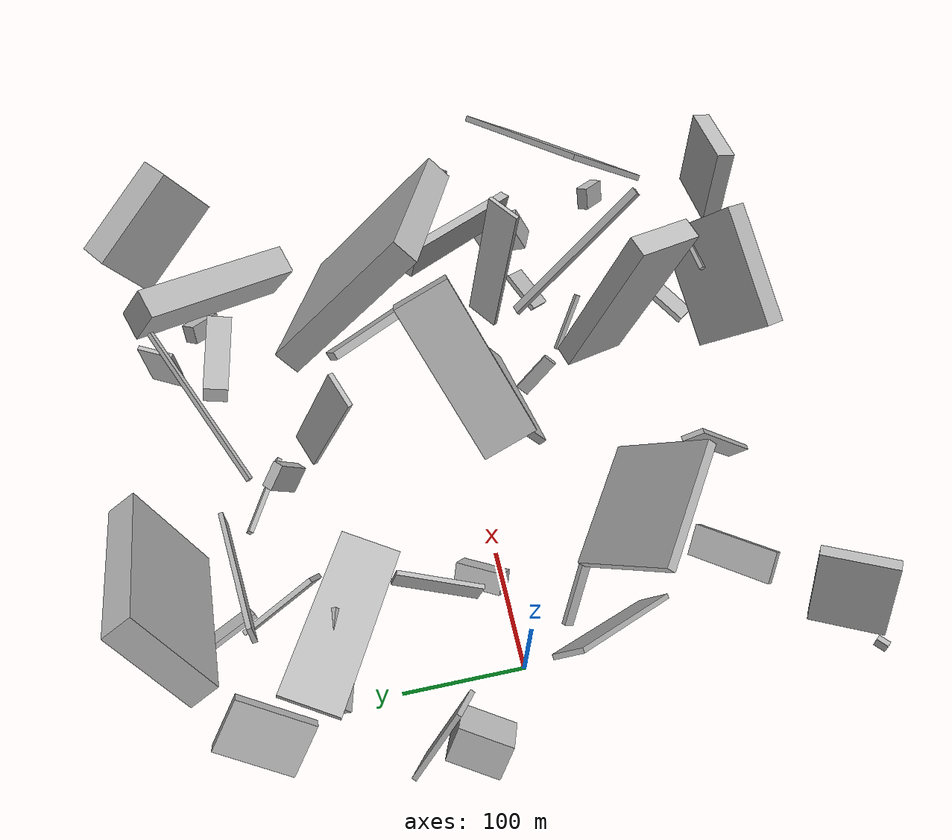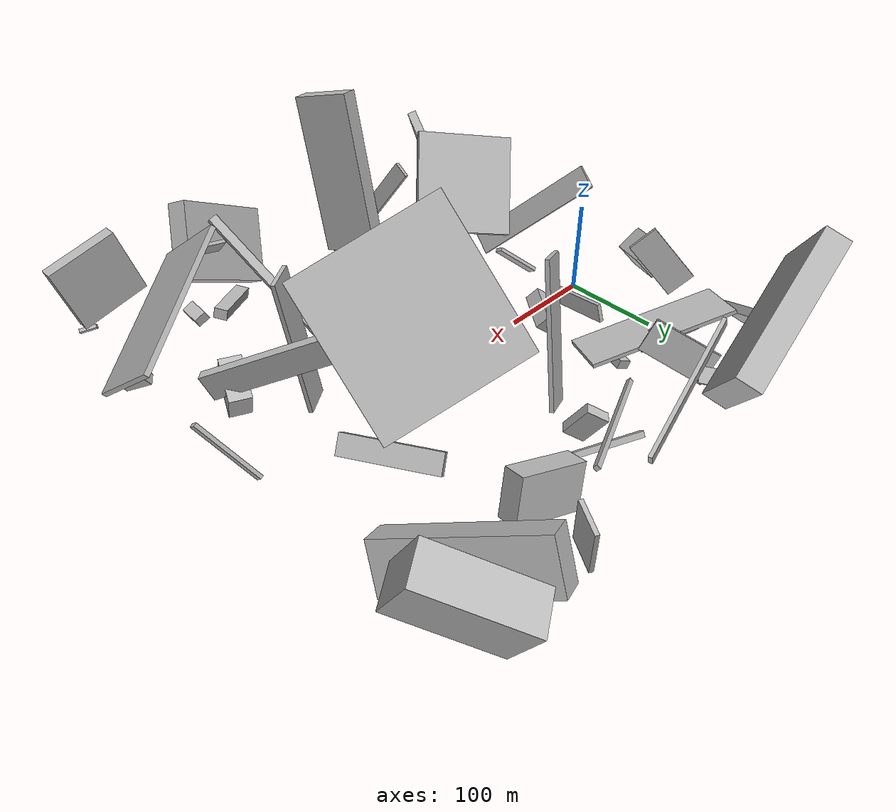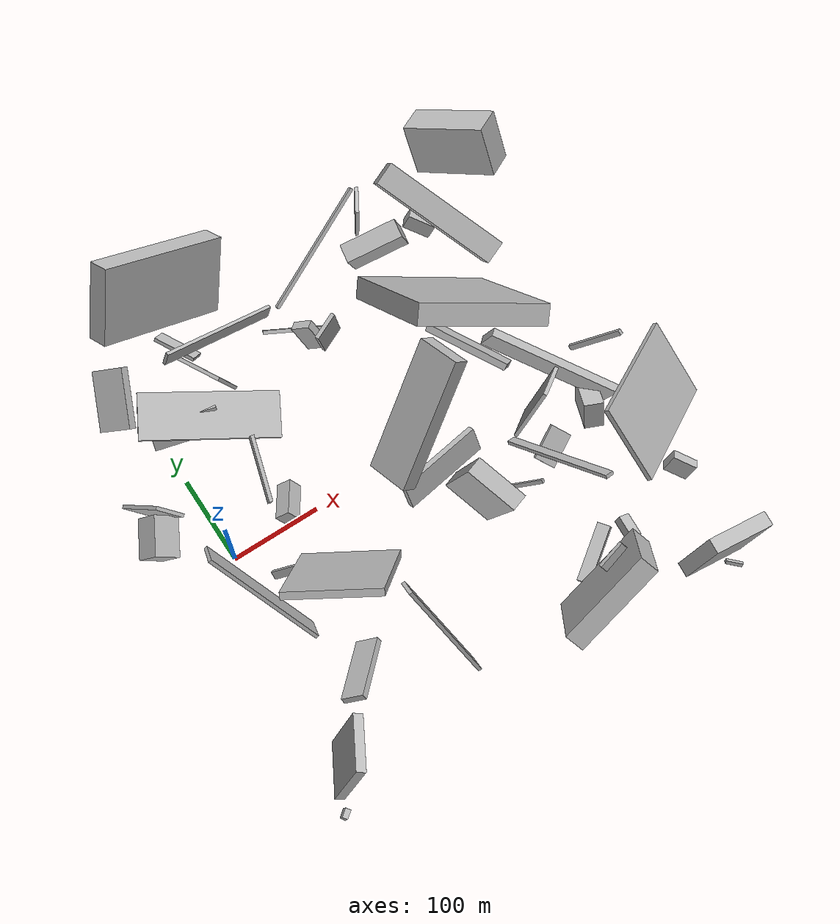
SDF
<sdf version="1.6">
 <world name="default">
  <scene>
   <sky><clouds><speed>12</speed></clouds></sky>
   <ambient>0.4 0.4 0.4 1</ambient>
   <background>0.7 0.7 0.7 1</background>
   <shadows>1</shadows>
  </scene>
  <gravity>0 0 -9.8066</gravity>
  <magnetic_field>6e-06 2.3e-05 -4.2e-05</magnetic_field>
  <physics default="0" name="default_physics" type="ode">
   <ode>
    <solver>
     <type>quick</type>
     <iters>10</iters>
     <sor>1.0</sor>
     <use_dynamic_moi_rescaling>0</use_dynamic_moi_rescaling>
    </solver>
    <constraints>
     <cfm>0</cfm>
     <erp>0.2</erp>
     <contact_max_correcting_vel>100</contact_max_correcting_vel>
     <contact_surface_layer>0.001</contact_surface_layer>
    </constraints>
   </ode>
   <max_step_size>0.004</max_step_size>
   <real_time_factor>1</real_time_factor>
   <real_time_update_rate>250</real_time_update_rate>
  </physics>
  <light name="sun" type="directional">
   <pose>0 0 10 0 0 0</pose>
   <diffuse>0.8 0.8 0.8 1</diffuse>
   <specular>0.2 0.2 0.2 1</specular>
   <attenuation>
    <range>1000</range>
    <constant>0.9</constant>
    <linear>0.01</linear>
    <quadratic>0.001</quadratic>
   </attenuation>
   <direction>-0.5 0.1 -0.9</direction>
  </light>
  <model name="building_1">
   <static>0</static>
   <pose>221.487763181922 23.052181419370008 89.71528710508542 1.1504890113441701 -0.7216341572448466 0.5139777428919662</pose>
   <link name="link">
    <gravity>0</gravity>
    <pose>0 0 25.0 0 0 0</pose>
    <collision name="collision"><geometry><box><size>150 19 50</size></box></geometry></collision>
    <visual name="visual">
     <cast_shadows>0</cast_shadows>
     <geometry><box><size>150 19 50</size></box></geometry>
     <material>
      <script>
       <uri>model://HANNAS_wall/materials/scripts</uri>
       <uri>model://HANNAS_wall/materials/textures</uri>
       <name>vrc/HANNAS_wall</name>
      </script>
     </material>
    </visual>
   </link>
  </model>
  <model name="building_2">
   <static>0</static>
   <pose>306.37165887382406 118.41661022144774 97.43362051471435 0.487295398145837 -0.6081858840977054 0.8956017029563953</pose>
   <link name="link">
    <gravity>0</gravity>
    <pose>0 0 75.0 0 0 0</pose>
    <collision name="collision"><geometry><box><size>23 143 150</size></box></geometry></collision>
    <visual name="visual">
     <cast_shadows>0</cast_shadows>
     <geometry><box><size>23 143 150</size></box></geometry>
     <material>
      <script>
       <uri>model://HANNAS_wall/materials/scripts</uri>
       <uri>model://HANNAS_wall/materials/textures</uri>
       <name>vrc/HANNAS_wall</name>
      </script>
     </material>
    </visual>
   </link>
  </model>
  <model name="building_3">
   <static>0</static>
   <pose>349.18855612760245 -92.22225526832418 18.828459376212162 0.5432671858082264 -0.8948896162883102 -1.5203595608651708</pose>
   <link name="link">
    <gravity>0</gravity>
    <pose>0 0 13.0 0 0 0</pose>
    <collision name="collision"><geometry><box><size>4 39 26</size></box></geometry></collision>
    <visual name="visual">
     <cast_shadows>0</cast_shadows>
     <geometry><box><size>4 39 26</size></box></geometry>
     <material>
      <script>
       <uri>model://HANNAS_wall/materials/scripts</uri>
       <uri>model://HANNAS_wall/materials/textures</uri>
       <name>vrc/HANNAS_wall</name>
      </script>
     </material>
    </visual>
   </link>
  </model>
  <model name="building_4">
   <static>0</static>
   <pose>394.0652277571636 -77.01510103814181 34.584760661903395 0.4502021482949957 0.016516670663098473 2.7308101255838815</pose>
   <link name="link">
    <gravity>0</gravity>
    <pose>0 0 16.0 0 0 0</pose>
    <collision name="collision"><geometry><box><size>21 43 32</size></box></geometry></collision>
    <visual name="visual">
     <cast_shadows>0</cast_shadows>
     <geometry><box><size>21 43 32</size></box></geometry>
     <material>
      <script>
       <uri>model://HANNAS_wall/materials/scripts</uri>
       <uri>model://HANNAS_wall/materials/textures</uri>
       <name>vrc/HANNAS_wall</name>
      </script>
     </material>
    </visual>
   </link>
  </model>
  <model name="building_5">
   <static>0</static>
   <pose>2.1083276253367247 -56.18322713752136 59.8862066766759 -0.5495255152679134 -0.737931118724055 2.098816565819649</pose>
   <link name="link">
    <gravity>0</gravity>
    <pose>0 0 13.0 0 0 0</pose>
    <collision name="collision"><geometry><box><size>150 4 26</size></box></geometry></collision>
    <visual name="visual">
     <cast_shadows>0</cast_shadows>
     <geometry><box><size>150 4 26</size></box></geometry>
     <material>
      <script>
       <uri>model://HANNAS_wall/materials/scripts</uri>
       <uri>model://HANNAS_wall/materials/textures</uri>
       <name>vrc/HANNAS_wall</name>
      </script>
     </material>
    </visual>
   </link>
  </model>
  <model name="building_6">
   <static>0</static>
   <pose>448.9790067865647 -278.0459087060791 62.665408264974815 0.3062302924070294 -1.2805442300413312 -0.36524879793346143</pose>
   <link name="link">
    <gravity>0</gravity>
    <pose>0 0 36.5 0 0 0</pose>
    <collision name="collision"><geometry><box><size>71 16 73</size></box></geometry></collision>
    <visual name="visual">
     <cast_shadows>0</cast_shadows>
     <geometry><box><size>71 16 73</size></box></geometry>
     <material>
      <script>
       <uri>model://HANNAS_wall/materials/scripts</uri>
       <uri>model://HANNAS_wall/materials/textures</uri>
       <name>vrc/HANNAS_wall</name>
      </script>
     </material>
    </visual>
   </link>
  </model>
  <model name="building_7">
   <static>0</static>
   <pose>301.55787692608806 -63.39902523548898 55.38471521442872 0.8366072376267925 0.22756160512058615 0.10301519235451419</pose>
   <link name="link">
    <gravity>0</gravity>
    <pose>0 0 75.0 0 0 0</pose>
    <collision name="collision"><geometry><box><size>9 4 150</size></box></geometry></collision>
    <visual name="visual">
     <cast_shadows>0</cast_shadows>
     <geometry><box><size>9 4 150</size></box></geometry>
     <material>
      <script>
       <uri>model://HANNAS_wall/materials/scripts</uri>
       <uri>model://HANNAS_wall/materials/textures</uri>
       <name>vrc/HANNAS_wall</name>
      </script>
     </material>
    </visual>
   </link>
  </model>
  <model name="building_8">
   <static>0</static>
   <pose>188.1029168388258 183.07882784282748 10.422866547539726 1.032464102278328 -0.07662437686516964 2.6918651828392397</pose>
   <link name="link">
    <gravity>0</gravity>
    <pose>0 0 2.0 0 0 0</pose>
    <collision name="collision"><geometry><box><size>74 6 4</size></box></geometry></collision>
    <visual name="visual">
     <cast_shadows>0</cast_shadows>
     <geometry><box><size>74 6 4</size></box></geometry>
     <material>
      <script>
       <uri>model://HANNAS_wall/materials/scripts</uri>
       <uri>model://HANNAS_wall/materials/textures</uri>
       <name>vrc/HANNAS_wall</name>
      </script>
     </material>
    </visual>
   </link>
  </model>
  <model name="building_9">
   <static>0</static>
   <pose>223.14847661806752 -104.09561385630366 102.64367542068244 -0.1289463837462255 -0.24485585635860788 1.9115555844627294</pose>
   <link name="link">
    <gravity>0</gravity>
    <pose>0 0 75.0 0 0 0</pose>
    <collision name="collision"><geometry><box><size>54 17 150</size></box></geometry></collision>
    <visual name="visual">
     <cast_shadows>0</cast_shadows>
     <geometry><box><size>54 17 150</size></box></geometry>
     <material>
      <script>
       <uri>model://HANNAS_wall/materials/scripts</uri>
       <uri>model://HANNAS_wall/materials/textures</uri>
       <name>vrc/HANNAS_wall</name>
      </script>
     </material>
    </visual>
   </link>
  </model>
  <model name="building_10">
   <static>0</static>
   <pose>446.6483636326277 -169.8048078042415 21.704352148604237 1.1427957527172317 0.38540714820381405 -0.8767174969706566</pose>
   <link name="link">
    <gravity>0</gravity>
    <pose>0 0 5.5 0 0 0</pose>
    <collision name="collision"><geometry><box><size>28 21 11</size></box></geometry></collision>
    <visual name="visual">
     <cast_shadows>0</cast_shadows>
     <geometry><box><size>28 21 11</size></box></geometry>
     <material>
      <script>
       <uri>model://HANNAS_wall/materials/scripts</uri>
       <uri>model://HANNAS_wall/materials/textures</uri>
       <name>vrc/HANNAS_wall</name>
      </script>
     </material>
    </visual>
   </link>
  </model>
  <model name="building_11">
   <static>0</static>
   <pose>63.84089888100075 207.12878020353634 37.773058555824925 -1.1977591874860782 0.3021518487757635 -2.6470807192223447</pose>
   <link name="link">
    <gravity>0</gravity>
    <pose>0 0 33.0 0 0 0</pose>
    <collision name="collision"><geometry><box><size>4 34 66</size></box></geometry></collision>
    <visual name="visual">
     <cast_shadows>0</cast_shadows>
     <geometry><box><size>4 34 66</size></box></geometry>
     <material>
      <script>
       <uri>model://HANNAS_wall/materials/scripts</uri>
       <uri>model://HANNAS_wall/materials/textures</uri>
       <name>vrc/HANNAS_wall</name>
      </script>
     </material>
    </visual>
   </link>
  </model>
  <model name="building_12">
   <static>0</static>
   <pose>433.3062196112807 -157.1507608249663 92.40449018547355 0.566073983072916 0.7354469500131228 2.49376679984294</pose>
   <link name="link">
    <gravity>0</gravity>
    <pose>0 0 44.5 0 0 0</pose>
    <collision name="collision"><geometry><box><size>5 147 89</size></box></geometry></collision>
    <visual name="visual">
     <cast_shadows>0</cast_shadows>
     <geometry><box><size>5 147 89</size></box></geometry>
     <material>
      <script>
       <uri>model://HANNAS_wall/materials/scripts</uri>
       <uri>model://HANNAS_wall/materials/textures</uri>
       <name>vrc/HANNAS_wall</name>
      </script>
     </material>
    </visual>
   </link>
  </model>
  <model name="building_13">
   <static>0</static>
   <pose>269.1937434869212 -94.40329577128684 30.97539997903222 0.7743611436172196 -0.5621740107847696 1.4181478218874586</pose>
   <link name="link">
    <gravity>0</gravity>
    <pose>0 0 26.0 0 0 0</pose>
    <collision name="collision"><geometry><box><size>4 4 52</size></box></geometry></collision>
    <visual name="visual">
     <cast_shadows>0</cast_shadows>
     <geometry><box><size>4 4 52</size></box></geometry>
     <material>
      <script>
       <uri>model://HANNAS_wall/materials/scripts</uri>
       <uri>model://HANNAS_wall/materials/textures</uri>
       <name>vrc/HANNAS_wall</name>
      </script>
     </material>
    </visual>
   </link>
  </model>
  <model name="building_14">
   <static>0</static>
   <pose>94.0554481715506 -82.49632811102951 73.15397356031286 0.2106945727562146 0.6328294521176044 -2.0287657554497716</pose>
   <link name="link">
    <gravity>0</gravity>
    <pose>0 0 52.0 0 0 0</pose>
    <collision name="collision"><geometry><box><size>8 101 104</size></box></geometry></collision>
    <visual name="visual">
     <cast_shadows>0</cast_shadows>
     <geometry><box><size>8 101 104</size></box></geometry>
     <material>
      <script>
       <uri>model://HANNAS_wall/materials/scripts</uri>
       <uri>model://HANNAS_wall/materials/textures</uri>
       <name>vrc/HANNAS_wall</name>
      </script>
     </material>
    </visual>
   </link>
  </model>
  <model name="building_15">
   <static>0</static>
   <pose>-46.49225082990135 77.14807404161283 45.63810638779557 1.8451822231751436 -0.8370651213435332 -0.9854765439035241</pose>
   <link name="link">
    <gravity>0</gravity>
    <pose>0 0 2.0 0 0 0</pose>
    <collision name="collision"><geometry><box><size>71 33 4</size></box></geometry></collision>
    <visual name="visual">
     <cast_shadows>0</cast_shadows>
     <geometry><box><size>71 33 4</size></box></geometry>
     <material>
      <script>
       <uri>model://HANNAS_wall/materials/scripts</uri>
       <uri>model://HANNAS_wall/materials/textures</uri>
       <name>vrc/HANNAS_wall</name>
      </script>
     </material>
    </visual>
   </link>
  </model>
  <model name="building_16">
   <static>0</static>
   <pose>428.8288596357012 -289.16528396583954 11.182221236304539 0.34681171159053414 0.5791145853813909 1.079747810632219</pose>
   <link name="link">
    <gravity>0</gravity>
    <pose>0 0 2.0 0 0 0</pose>
    <collision name="collision"><geometry><box><size>4 19 4</size></box></geometry></collision>
    <visual name="visual">
     <cast_shadows>0</cast_shadows>
     <geometry><box><size>4 19 4</size></box></geometry>
     <material>
      <script>
       <uri>model://HANNAS_wall/materials/scripts</uri>
       <uri>model://HANNAS_wall/materials/textures</uri>
       <name>vrc/HANNAS_wall</name>
      </script>
     </material>
    </visual>
   </link>
  </model>
  <model name="building_17">
   <static>0</static>
   <pose>-64.65300421325253 55.6944119049768 28.747870370325547 0.6948681578098627 -0.18293427075062013 1.0628794129979933</pose>
   <link name="link">
    <gravity>0</gravity>
    <pose>0 0 15.5 0 0 0</pose>
    <collision name="collision"><geometry><box><size>43 29 31</size></box></geometry></collision>
    <visual name="visual">
     <cast_shadows>0</cast_shadows>
     <geometry><box><size>43 29 31</size></box></geometry>
     <material>
      <script>
       <uri>model://HANNAS_wall/materials/scripts</uri>
       <uri>model://HANNAS_wall/materials/textures</uri>
       <name>vrc/HANNAS_wall</name>
      </script>
     </material>
    </visual>
   </link>
  </model>
  <model name="building_18">
   <static>0</static>
   <pose>119.86898775649233 102.6443285574504 28.687390218411476 0.6804026728440113 -1.301770346958528 -1.166630652655814</pose>
   <link name="link">
    <gravity>0</gravity>
    <pose>0 0 75.0 0 0 0</pose>
    <collision name="collision"><geometry><box><size>4 51 150</size></box></geometry></collision>
    <visual name="visual">
     <cast_shadows>0</cast_shadows>
     <geometry><box><size>4 51 150</size></box></geometry>
     <material>
      <script>
       <uri>model://HANNAS_wall/materials/scripts</uri>
       <uri>model://HANNAS_wall/materials/textures</uri>
       <name>vrc/HANNAS_wall</name>
      </script>
     </material>
    </visual>
   </link>
  </model>
  <model name="building_19">
   <static>0</static>
   <pose>83.71980137300305 127.78999380330467 9.413897527061138 1.5899461127672865 -0.36858740152783576 -0.35844128857172625</pose>
   <link name="link">
    <gravity>0</gravity>
    <pose>0 0 7.0 0 0 0</pose>
    <collision name="collision"><geometry><box><size>13 9 14</size></box></geometry></collision>
    <visual name="visual">
     <cast_shadows>0</cast_shadows>
     <geometry><box><size>13 9 14</size></box></geometry>
     <material>
      <script>
       <uri>model://HANNAS_wall/materials/scripts</uri>
       <uri>model://HANNAS_wall/materials/textures</uri>
       <name>vrc/HANNAS_wall</name>
      </script>
     </material>
    </visual>
   </link>
  </model>
  <model name="building_20">
   <static>0</static>
   <pose>71.34395675973202 228.04225402850452 33.35159090909338 0.8778341948695125 0.012130317868303922 -1.0774653675431893</pose>
   <link name="link">
    <gravity>0</gravity>
    <pose>0 0 8.0 0 0 0</pose>
    <collision name="collision"><geometry><box><size>49 4 16</size></box></geometry></collision>
    <visual name="visual">
     <cast_shadows>0</cast_shadows>
     <geometry><box><size>49 4 16</size></box></geometry>
     <material>
      <script>
       <uri>model://HANNAS_wall/materials/scripts</uri>
       <uri>model://HANNAS_wall/materials/textures</uri>
       <name>vrc/HANNAS_wall</name>
      </script>
     </material>
    </visual>
   </link>
  </model>
  <model name="building_21">
   <static>0</static>
   <pose>323.95590285490766 -225.42413151246487 89.4848388420625 -2.1303280940256344 -0.9139607356548808 2.266364374116667</pose>
   <link name="link">
    <gravity>0</gravity>
    <pose>0 0 15.5 0 0 0</pose>
    <collision name="collision"><geometry><box><size>14 4 31</size></box></geometry></collision>
    <visual name="visual">
     <cast_shadows>0</cast_shadows>
     <geometry><box><size>14 4 31</size></box></geometry>
     <material>
      <script>
       <uri>model://HANNAS_wall/materials/scripts</uri>
       <uri>model://HANNAS_wall/materials/textures</uri>
       <name>vrc/HANNAS_wall</name>
      </script>
     </material>
    </visual>
   </link>
  </model>
  <model name="building_22">
   <static>0</static>
   <pose>65.9152194957897 -157.19209280702214 32.84388829723512 1.1067773082874497 -0.5784550654217859 -0.5138934859402368</pose>
   <link name="link">
    <gravity>0</gravity>
    <pose>0 0 35.0 0 0 0</pose>
    <collision name="collision"><geometry><box><size>26 7 70</size></box></geometry></collision>
    <visual name="visual">
     <cast_shadows>0</cast_shadows>
     <geometry><box><size>26 7 70</size></box></geometry>
     <material>
      <script>
       <uri>model://HANNAS_wall/materials/scripts</uri>
       <uri>model://HANNAS_wall/materials/textures</uri>
       <name>vrc/HANNAS_wall</name>
      </script>
     </material>
    </visual>
   </link>
  </model>
  <model name="building_23">
   <static>0</static>
   <pose>-44.4304865005443 -282.58050858570743 9.325669657496165 -1.9478604974328693 -0.12989511432608503 -2.478929467651624</pose>
   <link name="link">
    <gravity>0</gravity>
    <pose>0 0 3.0 0 0 0</pose>
    <collision name="collision"><geometry><box><size>10 7 6</size></box></geometry></collision>
    <visual name="visual">
     <cast_shadows>0</cast_shadows>
     <geometry><box><size>10 7 6</size></box></geometry>
     <material>
      <script>
       <uri>model://HANNAS_wall/materials/scripts</uri>
       <uri>model://HANNAS_wall/materials/textures</uri>
       <name>vrc/HANNAS_wall</name>
      </script>
     </material>
    </visual>
   </link>
  </model>
  <model name="building_24">
   <static>0</static>
   <pose>172.54603858992814 188.43397607420837 78.26055096689532 1.2350118215811734 -0.783314692383547 2.24799412131377</pose>
   <link name="link">
    <gravity>0</gravity>
    <pose>0 0 75.0 0 0 0</pose>
    <collision name="collision"><geometry><box><size>4 4 150</size></box></geometry></collision>
    <visual name="visual">
     <cast_shadows>0</cast_shadows>
     <geometry><box><size>4 4 150</size></box></geometry>
     <material>
      <script>
       <uri>model://HANNAS_wall/materials/scripts</uri>
       <uri>model://HANNAS_wall/materials/textures</uri>
       <name>vrc/HANNAS_wall</name>
      </script>
     </material>
    </visual>
   </link>
  </model>
  <model name="building_25">
   <static>0</static>
   <pose>135.88021328500759 260.67090902384666 85.79259676762871 -0.6268693533167583 -0.8654298717072965 0.8402373945189332</pose>
   <link name="link">
    <gravity>0</gravity>
    <pose>0 0 75.0 0 0 0</pose>
    <collision name="collision"><geometry><box><size>84 24 150</size></box></geometry></collision>
    <visual name="visual">
     <cast_shadows>0</cast_shadows>
     <geometry><box><size>84 24 150</size></box></geometry>
     <material>
      <script>
       <uri>model://HANNAS_wall/materials/scripts</uri>
       <uri>model://HANNAS_wall/materials/textures</uri>
       <name>vrc/HANNAS_wall</name>
      </script>
     </material>
    </visual>
   </link>
  </model>
  <model name="building_26">
   <static>0</static>
   <pose>68.7282432387118 59.132446476244525 30.567013219413347 0.2734365703572838 0.10195950674282069 -0.2499576951515711</pose>
   <link name="link">
    <gravity>0</gravity>
    <pose>0 0 9.5 0 0 0</pose>
    <collision name="collision"><geometry><box><size>4 72 19</size></box></geometry></collision>
    <visual name="visual">
     <cast_shadows>0</cast_shadows>
     <geometry><box><size>4 72 19</size></box></geometry>
     <material>
      <script>
       <uri>model://HANNAS_wall/materials/scripts</uri>
       <uri>model://HANNAS_wall/materials/textures</uri>
       <name>vrc/HANNAS_wall</name>
      </script>
     </material>
    </visual>
   </link>
  </model>
  <model name="building_27">
   <static>0</static>
   <pose>310.2370793813675 252.4253317223446 27.62426879864359 0.035298390022554894 0.08216526622540739 1.0413134823690573</pose>
   <link name="link">
    <gravity>0</gravity>
    <pose>0 0 23.0 0 0 0</pose>
    <collision name="collision"><geometry><box><size>33 4 46</size></box></geometry></collision>
    <visual name="visual">
     <cast_shadows>0</cast_shadows>
     <geometry><box><size>33 4 46</size></box></geometry>
     <material>
      <script>
       <uri>model://HANNAS_wall/materials/scripts</uri>
       <uri>model://HANNAS_wall/materials/textures</uri>
       <name>vrc/HANNAS_wall</name>
      </script>
     </material>
    </visual>
   </link>
  </model>
  <model name="building_28">
   <static>0</static>
   <pose>-18.35377096765872 -247.57259429507522 75.71313805005863 2.612071149374628 -1.2044796863183518 -0.004999801353871519</pose>
   <link name="link">
    <gravity>0</gravity>
    <pose>0 0 5.0 0 0 0</pose>
    <collision name="collision"><geometry><box><size>75 58 10</size></box></geometry></collision>
    <visual name="visual">
     <cast_shadows>0</cast_shadows>
     <geometry><box><size>75 58 10</size></box></geometry>
     <material>
      <script>
       <uri>model://HANNAS_wall/materials/scripts</uri>
       <uri>model://HANNAS_wall/materials/textures</uri>
       <name>vrc/HANNAS_wall</name>
      </script>
     </material>
    </visual>
   </link>
  </model>
  <model name="building_29">
   <static>0</static>
   <pose>252.0978189315573 -71.53004211276829 22.6452840596981 0.9726970083073001 0.45103605826171944 -2.265608150638322</pose>
   <link name="link">
    <gravity>0</gravity>
    <pose>0 0 2.0 0 0 0</pose>
    <collision name="collision"><geometry><box><size>12 41 4</size></box></geometry></collision>
    <visual name="visual">
     <cast_shadows>0</cast_shadows>
     <geometry><box><size>12 41 4</size></box></geometry>
     <material>
      <script>
       <uri>model://HANNAS_wall/materials/scripts</uri>
       <uri>model://HANNAS_wall/materials/textures</uri>
       <name>vrc/HANNAS_wall</name>
      </script>
     </material>
    </visual>
   </link>
  </model>
  <model name="building_30">
   <static>0</static>
   <pose>25.63002864782783 136.69155087377217 19.42998694099016 -0.005006454142047644 -0.5592634946960919 -1.8117729302213454</pose>
   <link name="link">
    <gravity>0</gravity>
    <pose>0 0 15.5 0 0 0</pose>
    <collision name="collision"><geometry><box><size>13 74 31</size></box></geometry></collision>
    <visual name="visual">
     <cast_shadows>0</cast_shadows>
     <geometry><box><size>13 74 31</size></box></geometry>
     <material>
      <script>
       <uri>model://HANNAS_wall/materials/scripts</uri>
       <uri>model://HANNAS_wall/materials/textures</uri>
       <name>vrc/HANNAS_wall</name>
      </script>
     </material>
    </visual>
   </link>
  </model>
  <model name="building_31">
   <static>0</static>
   <pose>446.1607071318818 -15.460254938839782 40.37292229696583 -0.4693361648087987 -0.9050724454869742 -0.7772140475973355</pose>
   <link name="link">
    <gravity>0</gravity>
    <pose>0 0 3.0 0 0 0</pose>
    <collision name="collision"><geometry><box><size>77 4 6</size></box></geometry></collision>
    <visual name="visual">
     <cast_shadows>0</cast_shadows>
     <geometry><box><size>77 4 6</size></box></geometry>
     <material>
      <script>
       <uri>model://HANNAS_wall/materials/scripts</uri>
       <uri>model://HANNAS_wall/materials/textures</uri>
       <name>vrc/HANNAS_wall</name>
      </script>
     </material>
    </visual>
   </link>
  </model>
  <model name="building_32">
   <static>0</static>
   <pose>-35.134870644727606 216.06391149186948 36.36923954604882 0.6056303906605601 0.796397655482424 0.029857323301613215</pose>
   <link name="link">
    <gravity>0</gravity>
    <pose>0 0 22.0 0 0 0</pose>
    <collision name="collision"><geometry><box><size>9 65 44</size></box></geometry></collision>
    <visual name="visual">
     <cast_shadows>0</cast_shadows>
     <geometry><box><size>9 65 44</size></box></geometry>
     <material>
      <script>
       <uri>model://HANNAS_wall/materials/scripts</uri>
       <uri>model://HANNAS_wall/materials/textures</uri>
       <name>vrc/HANNAS_wall</name>
      </script>
     </material>
    </visual>
   </link>
  </model>
  <model name="building_33">
   <static>0</static>
   <pose>130.58962948082916 -200.01432263157383 71.0646627459925 2.127540978189792 0.21976158034929089 -3.064113433756242</pose>
   <link name="link">
    <gravity>0</gravity>
    <pose>0 0 9.0 0 0 0</pose>
    <collision name="collision"><geometry><box><size>4 150 18</size></box></geometry></collision>
    <visual name="visual">
     <cast_shadows>0</cast_shadows>
     <geometry><box><size>4 150 18</size></box></geometry>
     <material>
      <script>
       <uri>model://HANNAS_wall/materials/scripts</uri>
       <uri>model://HANNAS_wall/materials/textures</uri>
       <name>vrc/HANNAS_wall</name>
      </script>
     </material>
    </visual>
   </link>
  </model>
  <model name="building_34">
   <static>0</static>
   <pose>419.3512300566481 -77.05500492413213 58.59031298518307 1.1576916806750817 -0.030302983650561718 -2.410207934391909</pose>
   <link name="link">
    <gravity>0</gravity>
    <pose>0 0 75.0 0 0 0</pose>
    <collision name="collision"><geometry><box><size>9 27 150</size></box></geometry></collision>
    <visual name="visual">
     <cast_shadows>0</cast_shadows>
     <geometry><box><size>9 27 150</size></box></geometry>
     <material>
      <script>
       <uri>model://HANNAS_wall/materials/scripts</uri>
       <uri>model://HANNAS_wall/materials/textures</uri>
       <name>vrc/HANNAS_wall</name>
      </script>
     </material>
    </visual>
   </link>
  </model>
  <model name="building_35">
   <static>0</static>
   <pose>437.4238051691827 234.4380183488754 63.92883557868036 0.43782658801644075 -0.2979122370212956 -2.5911489280520024</pose>
   <link name="link">
    <gravity>0</gravity>
    <pose>0 0 29.5 0 0 0</pose>
    <collision name="collision"><geometry><box><size>35 95 59</size></box></geometry></collision>
    <visual name="visual">
     <cast_shadows>0</cast_shadows>
     <geometry><box><size>35 95 59</size></box></geometry>
     <material>
      <script>
       <uri>model://HANNAS_wall/materials/scripts</uri>
       <uri>model://HANNAS_wall/materials/textures</uri>
       <name>vrc/HANNAS_wall</name>
      </script>
     </material>
    </visual>
   </link>
  </model>
  <model name="building_36">
   <static>0</static>
   <pose>378.27597457133146 222.1511098108302 17.968880909086693 -2.7069672982515818 0.39849488924882104 0.9310266403398733</pose>
   <link name="link">
    <gravity>0</gravity>
    <pose>0 0 8.5 0 0 0</pose>
    <collision name="collision"><geometry><box><size>14 32 17</size></box></geometry></collision>
    <visual name="visual">
     <cast_shadows>0</cast_shadows>
     <geometry><box><size>14 32 17</size></box></geometry>
     <material>
      <script>
       <uri>model://HANNAS_wall/materials/scripts</uri>
       <uri>model://HANNAS_wall/materials/textures</uri>
       <name>vrc/HANNAS_wall</name>
      </script>
     </material>
    </visual>
   </link>
  </model>
  <model name="building_37">
   <static>0</static>
   <pose>311.5310878039233 -204.79605226834576 23.370809117075005 0.15282966561877276 0.22310321405768643 -2.514412123857973</pose>
   <link name="link">
    <gravity>0</gravity>
    <pose>0 0 5.5 0 0 0</pose>
    <collision name="collision"><geometry><box><size>63 14 11</size></box></geometry></collision>
    <visual name="visual">
     <cast_shadows>0</cast_shadows>
     <geometry><box><size>63 14 11</size></box></geometry>
     <material>
      <script>
       <uri>model://HANNAS_wall/materials/scripts</uri>
       <uri>model://HANNAS_wall/materials/textures</uri>
       <name>vrc/HANNAS_wall</name>
      </script>
     </material>
    </visual>
   </link>
  </model>
  <model name="building_38">
   <static>0</static>
   <pose>382.7743538415466 194.38045438800523 66.49972545091856 2.7452587317056674 -0.37211817584470563 2.0557628909654295</pose>
   <link name="link">
    <gravity>0</gravity>
    <pose>0 0 24.0 0 0 0</pose>
    <collision name="collision"><geometry><box><size>150 27 48</size></box></geometry></collision>
    <visual name="visual">
     <cast_shadows>0</cast_shadows>
     <geometry><box><size>150 27 48</size></box></geometry>
     <material>
      <script>
       <uri>model://HANNAS_wall/materials/scripts</uri>
       <uri>model://HANNAS_wall/materials/textures</uri>
       <name>vrc/HANNAS_wall</name>
      </script>
     </material>
    </visual>
   </link>
  </model>
  <model name="building_39">
   <static>0</static>
   <pose>293.58824654241965 -258.7779067310877 66.8586727454058 0.9069892530450516 -0.8985682433496517 -2.188496060492355</pose>
   <link name="link">
    <gravity>0</gravity>
    <pose>0 0 11.0 0 0 0</pose>
    <collision name="collision"><geometry><box><size>79 109 22</size></box></geometry></collision>
    <visual name="visual">
     <cast_shadows>0</cast_shadows>
     <geometry><box><size>79 109 22</size></box></geometry>
     <material>
      <script>
       <uri>model://HANNAS_wall/materials/scripts</uri>
       <uri>model://HANNAS_wall/materials/textures</uri>
       <name>vrc/HANNAS_wall</name>
      </script>
     </material>
    </visual>
   </link>
  </model>
  <model name="building_40">
   <static>0</static>
   <pose>338.2366373622332 -47.89366978698624 79.7824509123653 3.1373657648432807 -1.409605565342906 -0.9693676757325481</pose>
   <link name="link">
    <gravity>0</gravity>
    <pose>0 0 2.0 0 0 0</pose>
    <collision name="collision"><geometry><box><size>140 32 4</size></box></geometry></collision>
    <visual name="visual">
     <cast_shadows>0</cast_shadows>
     <geometry><box><size>140 32 4</size></box></geometry>
     <material>
      <script>
       <uri>model://HANNAS_wall/materials/scripts</uri>
       <uri>model://HANNAS_wall/materials/textures</uri>
       <name>vrc/HANNAS_wall</name>
      </script>
     </material>
    </visual>
   </link>
  </model>
  <model name="building_41">
   <static>0</static>
   <pose>112.87565628380739 212.4171168155816 51.55246846910887 -3.082597711261907 -0.4895062694863584 -2.9815635226651773</pose>
   <link name="link">
    <gravity>0</gravity>
    <pose>0 0 7.5 0 0 0</pose>
    <collision name="collision"><geometry><box><size>150 4 15</size></box></geometry></collision>
    <visual name="visual">
     <cast_shadows>0</cast_shadows>
     <geometry><box><size>150 4 15</size></box></geometry>
     <material>
      <script>
       <uri>model://HANNAS_wall/materials/scripts</uri>
       <uri>model://HANNAS_wall/materials/textures</uri>
       <name>vrc/HANNAS_wall</name>
      </script>
     </material>
    </visual>
   </link>
  </model>
  <model name="building_42">
   <static>0</static>
   <pose>66.42973545814785 1.5775192371995086 19.826762161642666 1.8811062795068074 0.6727004753360243 2.7690222264050655</pose>
   <link name="link">
    <gravity>0</gravity>
    <pose>0 0 20.5 0 0 0</pose>
    <collision name="collision"><geometry><box><size>18 17 41</size></box></geometry></collision>
    <visual name="visual">
     <cast_shadows>0</cast_shadows>
     <geometry><box><size>18 17 41</size></box></geometry>
     <material>
      <script>
       <uri>model://HANNAS_wall/materials/scripts</uri>
       <uri>model://HANNAS_wall/materials/textures</uri>
       <name>vrc/HANNAS_wall</name>
      </script>
     </material>
    </visual>
   </link>
  </model>
  <model name="building_43">
   <static>0</static>
   <pose>310.7899242020546 208.45867096242725 38.038998543775676 0.21541756354172645 -0.26860625663899645 -0.20351066360798367</pose>
   <link name="link">
    <gravity>0</gravity>
    <pose>0 0 21.5 0 0 0</pose>
    <collision name="collision"><geometry><box><size>65 21 43</size></box></geometry></collision>
    <visual name="visual">
     <cast_shadows>0</cast_shadows>
     <geometry><box><size>65 21 43</size></box></geometry>
     <material>
      <script>
       <uri>model://HANNAS_wall/materials/scripts</uri>
       <uri>model://HANNAS_wall/materials/textures</uri>
       <name>vrc/HANNAS_wall</name>
      </script>
     </material>
    </visual>
   </link>
  </model>
  <model name="building_44">
   <static>0</static>
   <pose>39.77614398124529 -51.88818063055824 30.692816227425894 2.285725864918024 -0.5954920074982216 1.6063541876583285</pose>
   <link name="link">
    <gravity>0</gravity>
    <pose>0 0 2.0 0 0 0</pose>
    <collision name="collision"><geometry><box><size>9 52 4</size></box></geometry></collision>
    <visual name="visual">
     <cast_shadows>0</cast_shadows>
     <geometry><box><size>9 52 4</size></box></geometry>
     <material>
      <script>
       <uri>model://HANNAS_wall/materials/scripts</uri>
       <uri>model://HANNAS_wall/materials/textures</uri>
       <name>vrc/HANNAS_wall</name>
      </script>
     </material>
    </visual>
   </link>
  </model>
  <model name="building_45">
   <static>0</static>
   <pose>183.86924041839225 117.81858606160496 102.8548495767941 -0.5917046893648046 -1.239573958371048 -2.1392387527882146</pose>
   <link name="link">
    <gravity>0</gravity>
    <pose>0 0 14.5 0 0 0</pose>
    <collision name="collision"><geometry><box><size>136 4 29</size></box></geometry></collision>
    <visual name="visual">
     <cast_shadows>0</cast_shadows>
     <geometry><box><size>136 4 29</size></box></geometry>
     <material>
      <script>
       <uri>model://HANNAS_wall/materials/scripts</uri>
       <uri>model://HANNAS_wall/materials/textures</uri>
       <name>vrc/HANNAS_wall</name>
      </script>
     </material>
    </visual>
   </link>
  </model>
  <model name="building_46">
   <static>0</static>
   <pose>357.85667993491853 21.60110036365231 15.862795662397483 -1.521633693910625 0.8832254455297044 0.5351564236434332</pose>
   <link name="link">
    <gravity>0</gravity>
    <pose>0 0 48.5 0 0 0</pose>
    <collision name="collision"><geometry><box><size>21 8 97</size></box></geometry></collision>
    <visual name="visual">
     <cast_shadows>0</cast_shadows>
     <geometry><box><size>21 8 97</size></box></geometry>
     <material>
      <script>
       <uri>model://HANNAS_wall/materials/scripts</uri>
       <uri>model://HANNAS_wall/materials/textures</uri>
       <name>vrc/HANNAS_wall</name>
      </script>
     </material>
    </visual>
   </link>
  </model>
  <model name="building_47">
   <static>0</static>
   <pose>347.08118464023653 -202.03866603388872 39.830303840239054 3.136929860244744 -1.1371212182948542 -0.0676490613833689</pose>
   <link name="link">
    <gravity>0</gravity>
    <pose>0 0 6.5 0 0 0</pose>
    <collision name="collision"><geometry><box><size>10 25 13</size></box></geometry></collision>
    <visual name="visual">
     <cast_shadows>0</cast_shadows>
     <geometry><box><size>10 25 13</size></box></geometry>
     <material>
      <script>
       <uri>model://HANNAS_wall/materials/scripts</uri>
       <uri>model://HANNAS_wall/materials/textures</uri>
       <name>vrc/HANNAS_wall</name>
      </script>
     </material>
    </visual>
   </link>
  </model>
  <model name="building_48">
   <static>0</static>
   <pose>227.94382631590167 -39.61838000620233 34.88848159493215 0.1696250564179549 -1.0489852657356884 1.6094453508200117</pose>
   <link name="link">
    <gravity>0</gravity>
    <pose>0 0 3.5 0 0 0</pose>
    <collision name="collision"><geometry><box><size>30 99 7</size></box></geometry></collision>
    <visual name="visual">
     <cast_shadows>0</cast_shadows>
     <geometry><box><size>30 99 7</size></box></geometry>
     <material>
      <script>
       <uri>model://HANNAS_wall/materials/scripts</uri>
       <uri>model://HANNAS_wall/materials/textures</uri>
       <name>vrc/HANNAS_wall</name>
      </script>
     </material>
    </visual>
   </link>
  </model>
  <model name="building_49">
   <static>0</static>
   <pose>187.17451202459273 170.92334263670048 22.65181666071125 -0.31906827002555127 0.9813301536460315 -1.1175980415881224</pose>
   <link name="link">
    <gravity>0</gravity>
    <pose>0 0 11.5 0 0 0</pose>
    <collision name="collision"><geometry><box><size>35 10 23</size></box></geometry></collision>
    <visual name="visual">
     <cast_shadows>0</cast_shadows>
     <geometry><box><size>35 10 23</size></box></geometry>
     <material>
      <script>
       <uri>model://HANNAS_wall/materials/scripts</uri>
       <uri>model://HANNAS_wall/materials/textures</uri>
       <name>vrc/HANNAS_wall</name>
      </script>
     </material>
    </visual>
   </link>
  </model>
 </world>
</sdf>
